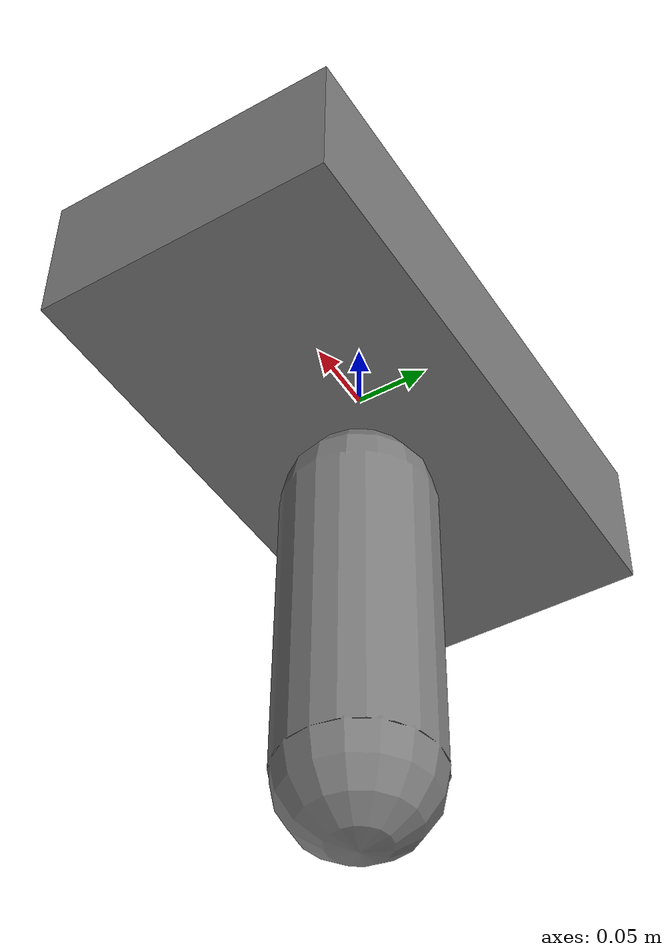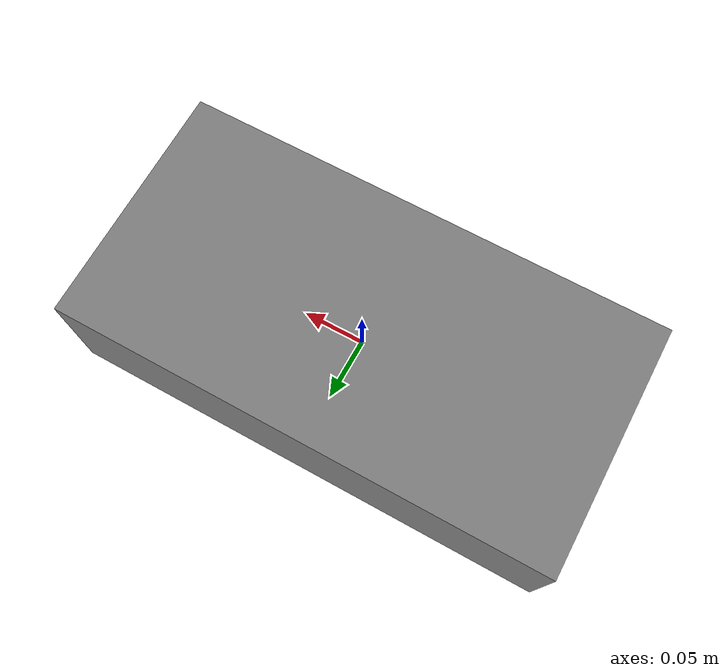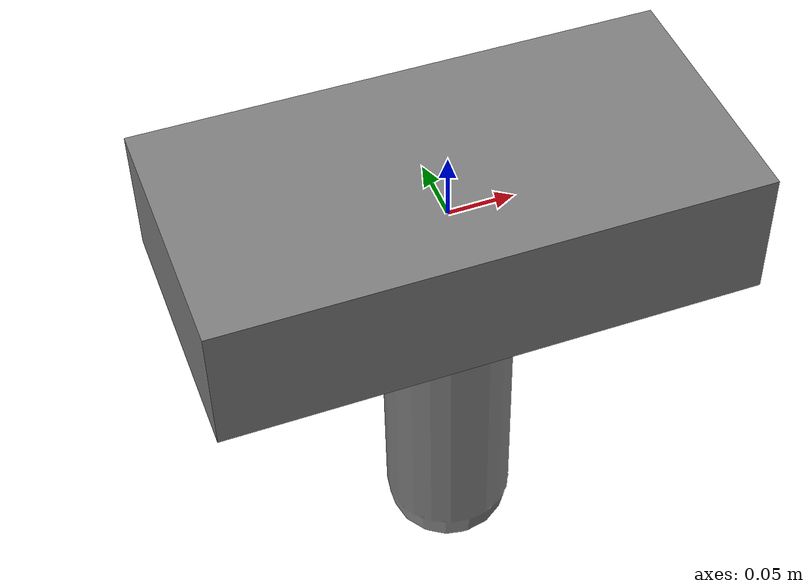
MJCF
<mujoco model='cartpole'>

    <compiler inertiafromgeom='true'/>

    <default>
		<joint armature="0" damping="0"/>
		<geom contype="0" friction="0 0 0" />
		<tendon/>
		<motor ctrlrange="-0.1 0.1"/>
	</default>

	<option gravity="0 0 -9.81" timestep="0.1" />

    <size nstack="3000"/>

    <custom>
		<!-- brax custom params -->
        <numeric data="10000" name="constraint_stiffness"/>
		<numeric data="10000" name="constraint_limit_stiffness"/>
		<numeric data="0" name="spring_mass_scale"/>
		<numeric data="1" name="spring_inertia_scale"/>
	</custom>

    <worldbody>
        <body name='cart' pos='0 0 0'>
            <joint name='slider' type='slide' limited='true' pos='0 0 0' axis='1 0 0' range='-5.0 5.0' damping='0.01'/>
            <geom name='cart_geom' type='box' pos='0 0 0' size='0.2 0.1 0.05' mass='1.0'/>
            <body name='pole' pos='0 0 0'>
                <joint name='revolute_joint' type='hinge' axis='0 1 0' damping='0.01'/>
                <geom name='pole_geom' type='capsule' pos='0 0 -0.2' size='0.05 0.1' mass='1.0'/>
            </body>
        </body>
    </worldbody>

    <actuator>
        <motor name='slide' joint='slider' gear='100 0 0 0 0 0' ctrllimited='true' ctrlrange='-0.1 0.1'/>
    </actuator>

</mujoco>
